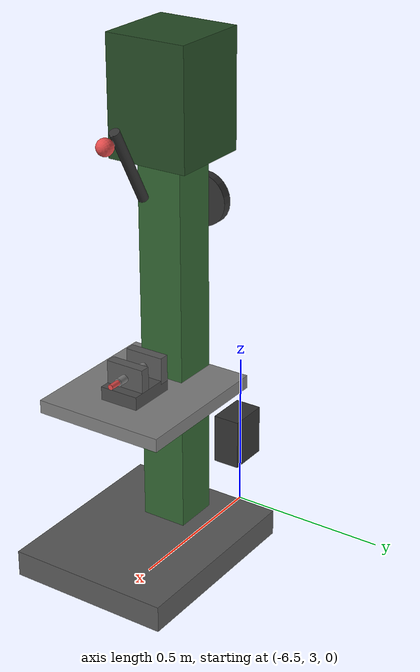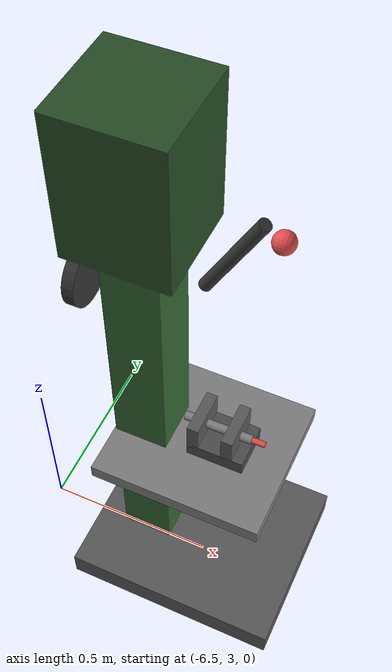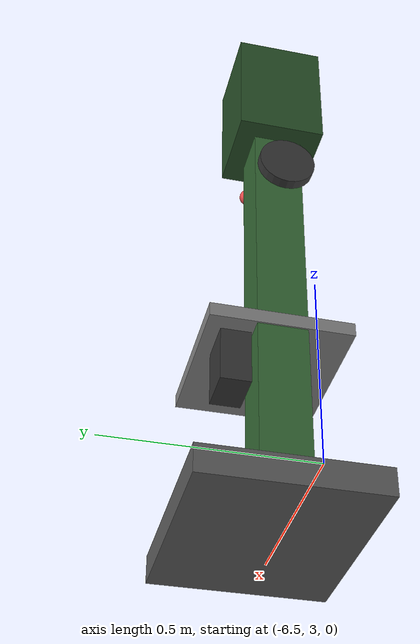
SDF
<?xml version="1.0"?>
<sdf version="1.6">
  <model name="drill_press">
    <pose>-6 3 0.1 0 0 0</pose>
    <static>false</static>

    <!-- BASE -->
    <link name="base">
      <pose>0 0 0 0 0 0</pose>
      <inertial>
        <mass>80.0</mass>
        <inertia>
          <ixx>2.0</ixx>
          <iyy>2.0</iyy>
          <izz>3.0</izz>
        </inertia>
      </inertial>

      <!-- Basamento -->
      <visual name="base_platform">
        <geometry>
          <box>
            <size>0.6 0.5 0.08</size>
          </box>
        </geometry>
        <material>
          <ambient>0.25 0.25 0.25 1</ambient>
          <diffuse>0.35 0.35 0.35 1</diffuse>
        </material>
      </visual>

      <!-- Piano di lavoro -->
      <visual name="work_table">
        <pose>0 0 0.5 0 0 0</pose>
        <geometry>
          <box>
            <size>0.45 0.4 0.04</size>
          </box>
        </geometry>
        <material>
          <ambient>0.4 0.4 0.4 1</ambient>
          <diffuse>0.5 0.5 0.5 1</diffuse>
        </material>
      </visual>

      <!-- Colonna verticale -->
      <visual name="column">
        <pose>-0.15 0 0.75 0 0 0</pose>
        <geometry>
          <cylinder>
            <radius>0.06</radius>
            <length>1.5</length>
          </cylinder>
        </geometry>
        <material>
          <ambient>0.3 0.3 0.3 1</ambient>
          <diffuse>0.4 0.4 0.4 1</diffuse>
        </material>
      </visual>

      <!-- Copertura colonna -->
      <visual name="column_cover">
        <pose>-0.15 0 0.75 0 0 0</pose>
        <geometry>
          <box>
            <size>0.14 0.14 1.5</size>
          </box>
        </geometry>
        <material>
          <ambient>0.15 0.3 0.15 1</ambient>
          <diffuse>0.2 0.4 0.2 1</diffuse>
        </material>
      </visual>

      <!-- Testa del trapano (corpo motore) -->
      <visual name="motor_housing">
        <pose>-0.15 0 1.35 0 0 0</pose>
        <geometry>
          <box>
            <size>0.25 0.25 0.35</size>
          </box>
        </geometry>
        <material>
          <ambient>0.1 0.2 0.1 1</ambient>
          <diffuse>0.15 0.3 0.15 1</diffuse>
        </material>
      </visual>

      <!-- Volante di regolazione -->
      <visual name="adjustment_wheel">
        <pose>-0.3 0 1.0 0 1.5708 0</pose>
        <geometry>
          <cylinder>
            <radius>0.08</radius>
            <length>0.03</length>
          </cylinder>
        </geometry>
        <material>
          <ambient>0.15 0.15 0.15 1</ambient>
          <diffuse>0.2 0.2 0.2 1</diffuse>
        </material>
      </visual>

      <!-- Razze del volante -->
      <visual name="wheel_spoke1">
        <pose>-0.3 0.04 1.0 0 1.5708 0</pose>
        <geometry>
          <box>
            <size>0.12 0.02 0.015</size>
          </box>
        </geometry>
        <material>
          <ambient>0.15 0.15 0.15 1</ambient>
          <diffuse>0.2 0.2 0.2 1</diffuse>
        </material>
      </visual>

      <visual name="wheel_spoke2">
        <pose>-0.3 -0.04 1.0 0 1.5708 0</pose>
        <geometry>
          <box>
            <size>0.12 0.02 0.015</size>
          </box>
        </geometry>
        <material>
          <ambient>0.15 0.15 0.15 1</ambient>
          <diffuse>0.2 0.2 0.2 1</diffuse>
        </material>
      </visual>

      <!-- Leva di comando -->
      <visual name="control_lever">
        <pose>0.05 0 1.2 0 0.5 0</pose>
        <geometry>
          <cylinder>
            <radius>0.015</radius>
            <length>0.25</length>
          </cylinder>
        </geometry>
        <material>
          <ambient>0.15 0.15 0.15 1</ambient>
          <diffuse>0.2 0.2 0.2 1</diffuse>
        </material>
      </visual>

      <visual name="lever_handle">
        <pose>0.15 0 1.28 0 1.5708 0</pose>
        <geometry>
          <sphere>
            <radius>0.025</radius>
          </sphere>
        </geometry>
        <material>
          <ambient>0.8 0.2 0.2 1</ambient>
          <diffuse>0.9 0.3 0.3 1</diffuse>
        </material>
      </visual>

      <!-- Supporto mandrino -->
      <visual name="spindle_housing">
        <pose>-0.15 0 1.05 0 0 0</pose>
        <geometry>
          <cylinder>
            <radius>0.045</radius>
            <length>0.15</length>
          </cylinder>
        </geometry>
        <material>
          <ambient>0.25 0.25 0.25 1</ambient>
          <diffuse>0.35 0.35 0.35 1</diffuse>
        </material>
      </visual>

      <!-- Mandrino (parte rotante) -->
      <visual name="spindle">
        <pose>-0.15 0 0.92 0 0 0</pose>
        <geometry>
          <cylinder>
            <radius>0.025</radius>
            <length>0.12</length>
          </cylinder>
        </geometry>
        <material>
          <ambient>0.5 0.5 0.5 1</ambient>
          <diffuse>0.6 0.6 0.6 1</diffuse>
        </material>
      </visual>

      <!-- Punta trapano -->
      <visual name="drill_bit">
        <pose>-0.15 0 0.82 0 0 0</pose>
        <geometry>
          <cylinder>
            <radius>0.006</radius>
            <length>0.08</length>
          </cylinder>
        </geometry>
        <material>
          <ambient>0.7 0.7 0.7 1</ambient>
          <diffuse>0.8 0.8 0.8 1</diffuse>
          <emissive>0.1 0.1 0.1 1</emissive>
        </material>
      </visual>

      <!-- Cono della punta -->
      <visual name="drill_tip">
        <pose>-0.15 0 0.78 0 0 0</pose>
        <geometry>
          <cylinder>
            <radius>0.003</radius>
            <length>0.02</length>
          </cylinder>
        </geometry>
        <material>
          <ambient>0.7 0.7 0.7 1</ambient>
          <diffuse>0.8 0.8 0.8 1</diffuse>
        </material>
      </visual>

      <!-- Morsa sul piano di lavoro -->
      <visual name="vise_base">
        <pose>0.05 0 0.54 0 0 0</pose>
        <geometry>
          <box>
            <size>0.15 0.12 0.04</size>
          </box>
        </geometry>
        <material>
          <ambient>0.2 0.2 0.2 1</ambient>
          <diffuse>0.3 0.3 0.3 1</diffuse>
        </material>
      </visual>

      <visual name="vise_jaw1">
        <pose>-0.01 0 0.59 0 0 0</pose>
        <geometry>
          <box>
            <size>0.03 0.12 0.08</size>
          </box>
        </geometry>
        <material>
          <ambient>0.25 0.25 0.25 1</ambient>
          <diffuse>0.35 0.35 0.35 1</diffuse>
        </material>
      </visual>

      <visual name="vise_jaw2">
        <pose>0.08 0 0.59 0 0 0</pose>
        <geometry>
          <box>
            <size>0.03 0.12 0.08</size>
          </box>
        </geometry>
        <material>
          <ambient>0.25 0.25 0.25 1</ambient>
          <diffuse>0.35 0.35 0.35 1</diffuse>
        </material>
      </visual>

      <!-- Vite della morsa -->
      <visual name="vise_screw">
        <pose>0.035 0 0.59 0 1.5708 0</pose>
        <geometry>
          <cylinder>
            <radius>0.012</radius>
            <length>0.18</length>
          </cylinder>
        </geometry>
        <material>
          <ambient>0.4 0.4 0.4 1</ambient>
          <diffuse>0.5 0.5 0.5 1</diffuse>
        </material>
      </visual>

      <!-- Maniglia morsa -->
      <visual name="vise_handle">
        <pose>0.12 0 0.59 0 1.5708 0</pose>
        <geometry>
          <cylinder>
            <radius>0.008</radius>
            <length>0.08</length>
          </cylinder>
        </geometry>
        <material>
          <ambient>0.8 0.2 0.2 1</ambient>
          <diffuse>0.9 0.3 0.3 1</diffuse>
        </material>
      </visual>

      <!-- Pannello elettrico -->
      <visual name="electrical_box">
        <pose>-0.25 0.15 0.3 0 0 0</pose>
        <geometry>
          <box>
            <size>0.12 0.08 0.15</size>
          </box>
        </geometry>
        <material>
          <ambient>0.15 0.15 0.15 1</ambient>
          <diffuse>0.2 0.2 0.2 1</diffuse>
        </material>
      </visual>

      <!-- Pulsanti -->
      <visual name="start_button">
        <pose>-0.24 0.16 0.34 0 1.5708 0</pose>
        <geometry>
          <cylinder>
            <radius>0.015</radius>
            <length>0.01</length>
          </cylinder>
        </geometry>
        <material>
          <ambient>0.2 0.8 0.2 1</ambient>
          <diffuse>0.3 0.9 0.3 1</diffuse>
          <emissive>0.1 0.3 0.1 1</emissive>
        </material>
      </visual>

      <visual name="stop_button">
        <pose>-0.24 0.16 0.3 0 1.5708 0</pose>
        <geometry>
          <cylinder>
            <radius>0.02</radius>
            <length>0.015</length>
          </cylinder>
        </geometry>
        <material>
          <ambient>0.8 0.2 0.2 1</ambient>
          <diffuse>0.9 0.3 0.3 1</diffuse>
          <emissive>0.3 0.1 0.1 1</emissive>
        </material>
      </visual>

      <!-- Targhetta identificativa -->
      <visual name="nameplate">
        <pose>-0.15 -0.071 1.4 0 0 0</pose>
        <geometry>
          <box>
            <size>0.15 0.001 0.06</size>
          </box>
        </geometry>
        <material>
          <ambient>0.9 0.85 0.7 1</ambient>
          <diffuse>0.95 0.9 0.75 1</diffuse>
        </material>
      </visual>

      <!-- Collision semplificata -->
      <collision name="base_collision">
        <geometry>
          <box>
            <size>0.6 0.5 0.08</size>
          </box>
        </geometry>
      </collision>

      <collision name="column_collision">
        <pose>-0.15 0 0.75 0 0 0</pose>
        <geometry>
          <box>
            <size>0.15 0.15 1.5</size>
          </box>
        </geometry>
      </collision>

      <collision name="table_collision">
        <pose>0 0 0.5 0 0 0</pose>
        <geometry>
          <box>
            <size>0.45 0.4 0.04</size>
          </box>
        </geometry>
      </collision>
    </link>
  </model>
</sdf>
